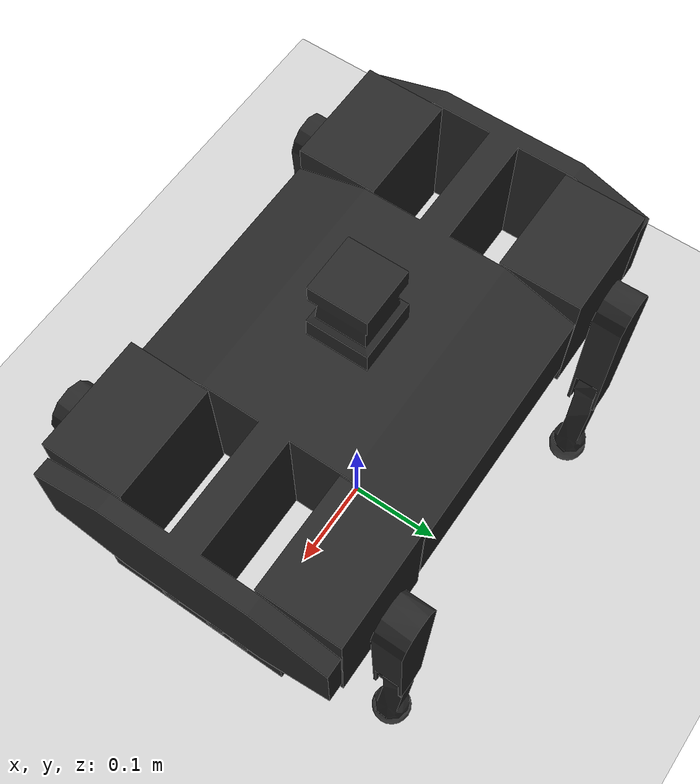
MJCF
<mujoco>
  <option timestep="0.001" gravity="0 0 -9.81"/>
  <compiler angle="radian" meshdir="../meshes" autolimits="true"/>

  <asset>
    <!-- Meshes -->
    <mesh name="base_simple" file="/home/umesh/spot_mujoco/src/champ_description/share/champ_description/meshes/base_simple.stl" scale="0.001 0.001 0.001"/>
    <mesh name="hokuyo" file="/home/umesh/spot_mujoco/src/champ_description/share/champ_description/meshes/hokuyo_utm_30lx.dae"/>
    <mesh name="asus_camera" file="/home/umesh/spot_mujoco/src/champ_description/share/champ_description/meshes/asus_camera_simple.dae"/>
    <mesh name="hip" file="/home/umesh/spot_mujoco/src/champ/champ_description/meshes/hip.stl" scale="0.001 0.001 0.001"/>
    <mesh name="upper_leg" file="/home/umesh/spot_mujoco/src/champ/champ_description/meshes/upper_leg_simple.stl" scale="0.001 0.001 0.001"/>
    <mesh name="lower_leg" file="/home/umesh/spot_mujoco/src/champ/champ_description/meshes/lower_leg_simple.stl" scale="0.001 0.001 0.001"/>

    <!-- Materials -->
    <material name="black" rgba="0.15 0.15 0.15 1.0"/>
  </asset>

  <worldbody>
    <!-- Ground -->
    <geom name="ground" type="plane" size="10 10 0.1" pos="0 0 0" rgba="0.8 0.8 0.8 1"/>

    <!-- Base Link -->
    <body name="base_link" pos="0 0 0.3">
      <freejoint/>
      <inertial pos="0 0 0" mass="2.0" diaginertia="0.016833 0.044483 0.055683"/>
      <geom name="base_geom" type="mesh" mesh="base_simple" material="black" solimp="0.9 0.95 0.001" solref="0.02 1"/>

      <!-- Hokuyo Sensor -->
      <body name="hokuyo_frame" pos="0.0 0.0 0.105">
        <inertial mass="0.270" diaginertia="2.632e-4 2.632e-4 1.62e-4"/>
        <geom type="mesh" mesh="hokuyo" material="black"/>
      </body>

      <!-- Camera -->
      <body name="camera_link" pos="0.25 0.0 -0.075">
        <inertial mass="0.200" diaginertia="5.8083e-4 3.0833e-5 5.9083e-4"/>
        <geom type="mesh" mesh="asus_camera" material="black"/>
      </body>

      <!-- IMU -->
      <body name="imu_link">
        <inertial mass="0.001" diaginertia="1e-9 1e-9 1e-9"/>
      </body>

      <!-- Left Front Leg -->
      <body name="lf_hip_link" pos="0.175 0.105 0">
        <joint name="lf_hip_joint" type="hinge" axis="1 0 0" range="-3.14 3.14" damping="0.1"/>
        <inertial mass="0.25" diaginertia="0.000485 0.000613 0.000395"/>
        <geom type="mesh" mesh="hip" material="black"/>

        <body name="lf_upper_leg_link" pos="0 0.06 0">
          <joint name="lf_upper_leg_joint" type="hinge" axis="0 1 0" range="-3.14 3.14" damping="0.1"/>
          <inertial mass="0.125" pos="0 0 -0.0705" diaginertia="0.000387 0.000404 3.54e-5"/>
          <geom type="mesh" mesh="upper_leg" material="black"/>

          <body name="lf_lower_leg_link" pos="0 0 -0.141">
            <joint name="lf_lower_leg_joint" type="hinge" axis="0 1 0" range="-3.14 3.14" damping="0.1"/>
            <inertial mass="0.125" pos="0 0 -0.063" diaginertia="0.000259 0.000269 2.09e-5"/>
            <geom type="mesh" mesh="lower_leg" material="black"/>

            <body name="lf_foot_link" pos="0.00325 0 -0.141">
              <geom name="lf_foot_geom" type="sphere" size="0.02" pos="0 0 0" contype="1" conaffinity="1" solimp="0.9 0.95 0.001" solref="0.02 1" rgba="0.3 0.3 0.3 1"/>
            </body>
          </body>
        </body>
      </body>

      <!-- Left Hind Leg (mirror of LF) -->
      <body name="lh_hip_link" pos="-0.175 0.105 0">
        <joint name="lh_hip_joint" type="hinge" axis="1 0 0" range="-3.14 3.14" damping="0.1"/>
        <inertial mass="0.25" diaginertia="0.000485 0.000613 0.000395"/>
        <geom type="mesh" mesh="hip" material="black"/>

        <body name="lh_upper_leg_link" pos="0 0.06 0">
          <joint name="lh_upper_leg_joint" type="hinge" axis="0 1 0" range="-3.14 3.14" damping="0.1"/>
          <inertial mass="0.125" pos="0 0 -0.0705" diaginertia="0.000387 0.000404 3.54e-5"/>
          <geom type="mesh" mesh="upper_leg" material="black"/>

          <body name="lh_lower_leg_link" pos="0 0 -0.141">
            <joint name="lh_lower_leg_joint" type="hinge" axis="0 1 0" range="-3.14 3.14" damping="0.1"/>
            <inertial mass="0.125" pos="0 0 -0.063" diaginertia="0.000259 0.000269 2.09e-5"/>
            <geom type="mesh" mesh="lower_leg" material="black"/>

            <body name="lh_foot_link" pos="0.00325 0 -0.141">
              <geom name="lh_foot_geom" type="sphere" size="0.02" pos="0 0 0" contype="1" conaffinity="1" solimp="0.9 0.95 0.001" solref="0.02 1" rgba="0.3 0.3 0.3 1"/>
            </body>
          </body>
        </body>
      </body>

      <!-- Right Front Leg (mirror of LF) -->
      <body name="rf_hip_link" pos="0.175 -0.105 0">
        <joint name="rf_hip_joint" type="hinge" axis="1 0 0" range="-3.14 3.14" damping="0.1"/>
        <inertial mass="0.25" diaginertia="0.000485 0.000613 0.000395"/>
        <geom type="mesh" mesh="hip" material="black"/>

        <body name="rf_upper_leg_link" pos="0 -0.06 0">
          <joint name="rf_upper_leg_joint" type="hinge" axis="0 1 0" range="-3.14 3.14" damping="0.1"/>
          <inertial mass="0.125" pos="0 0 -0.0705" diaginertia="0.000387 0.000404 3.54e-5"/>
          <geom type="mesh" mesh="upper_leg" material="black"/>

          <body name="rf_lower_leg_link" pos="0 0 -0.141">
            <joint name="rf_lower_leg_joint" type="hinge" axis="0 1 0" range="-3.14 3.14" damping="0.1"/>
            <inertial mass="0.125" pos="0 0 -0.063" diaginertia="0.000259 0.000269 2.09e-5"/>
            <geom type="mesh" mesh="lower_leg" material="black"/>

            <body name="rf_foot_link" pos="0.00325 0 -0.141">
              <geom name="rf_foot_geom" type="sphere" size="0.02" pos="0 0 0" contype="1" conaffinity="1" solimp="0.9 0.95 0.001" solref="0.02 1" rgba="0.3 0.3 0.3 1"/>
            </body>
          </body>
        </body>
      </body>

      <!-- Right Hind Leg (mirror of LF) -->
      <body name="rh_hip_link" pos="-0.175 -0.105 0">
        <joint name="rh_hip_joint" type="hinge" axis="1 0 0" range="-3.14 3.14" damping="0.1"/>
        <inertial mass="0.25" diaginertia="0.000485 0.000613 0.000395"/>
        <geom type="mesh" mesh="hip" material="black"/>

        <body name="rh_upper_leg_link" pos="0 -0.06 0">
          <joint name="rh_upper_leg_joint" type="hinge" axis="0 1 0" range="-3.14 3.14" damping="0.1"/>
          <inertial mass="0.125" pos="0 0 -0.0705" diaginertia="0.000387 0.000404 3.54e-5"/>
          <geom type="mesh" mesh="upper_leg" material="black"/>

          <body name="rh_lower_leg_link" pos="0 0 -0.141">
            <joint name="rh_lower_leg_joint" type="hinge" axis="0 1 0" range="-3.14 3.14" damping="0.1"/>
            <inertial mass="0.125" pos="0 0 -0.063" diaginertia="0.000259 0.000269 2.09e-5"/>
            <geom type="mesh" mesh="lower_leg" material="black"/>

            <body name="rh_foot_link" pos="0.00325 0 -0.141">
              <geom name="rh_foot_geom" type="sphere" size="0.02" pos="0 0 0" contype="1" conaffinity="1" solimp="0.9 0.95 0.001" solref="0.02 1" rgba="0.3 0.3 0.3 1"/>
            </body>
          </body>
        </body>
      </body>
    </body>
  </worldbody>

  <actuator>
    <!-- Actuators for all joints (position/velocity/effort control) -->
    <motor name="lf_hip_motor" joint="lf_hip_joint" gear="1" ctrlrange="-25 25"/>
    <motor name="lf_upper_leg_motor" joint="lf_upper_leg_joint" gear="1" ctrlrange="-25 25"/>
    <motor name="lf_lower_leg_motor" joint="lf_lower_leg_joint" gear="1" ctrlrange="-25 25"/>

    <motor name="lh_hip_motor" joint="lh_hip_joint" gear="1" ctrlrange="-25 25"/>
    <motor name="lh_upper_leg_motor" joint="lh_upper_leg_joint" gear="1" ctrlrange="-25 25"/>
    <motor name="lh_lower_leg_motor" joint="lh_lower_leg_joint" gear="1" ctrlrange="-25 25"/>

    <motor name="rf_hip_motor" joint="rf_hip_joint" gear="1" ctrlrange="-25 25"/>
    <motor name="rf_upper_leg_motor" joint="rf_upper_leg_joint" gear="1" ctrlrange="-25 25"/>
    <motor name="rf_lower_leg_motor" joint="rf_lower_leg_joint" gear="1" ctrlrange="-25 25"/>

    <motor name="rh_hip_motor" joint="rh_hip_joint" gear="1" ctrlrange="-25 25"/>
    <motor name="rh_upper_leg_motor" joint="rh_upper_leg_joint" gear="1" ctrlrange="-25 25"/>
    <motor name="rh_lower_leg_motor" joint="rh_lower_leg_joint" gear="1" ctrlrange="-25 25"/>
  </actuator>

  <sensor>
    <!-- Example IMU sensor (attached to base_link) -->
    <gyro name="imu_gyro" site="imu_link"/>
    <accelerometer name="imu_accel" site="imu_link"/>
  </sensor>
</mujoco>
